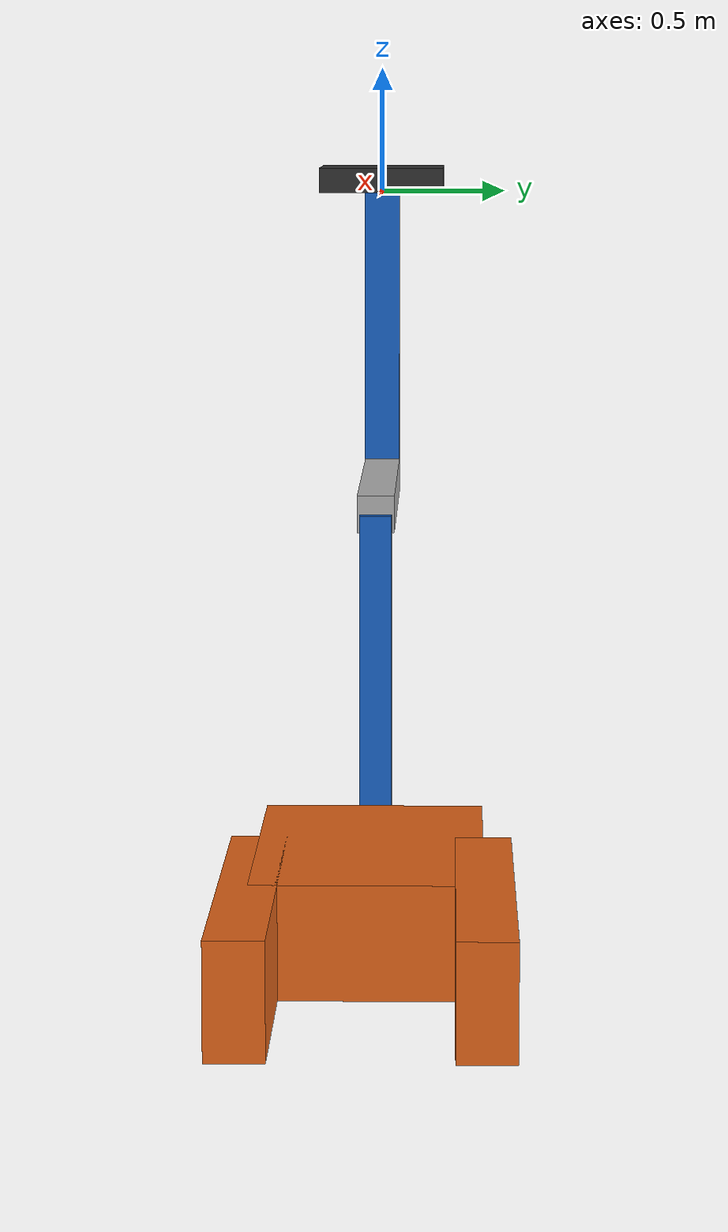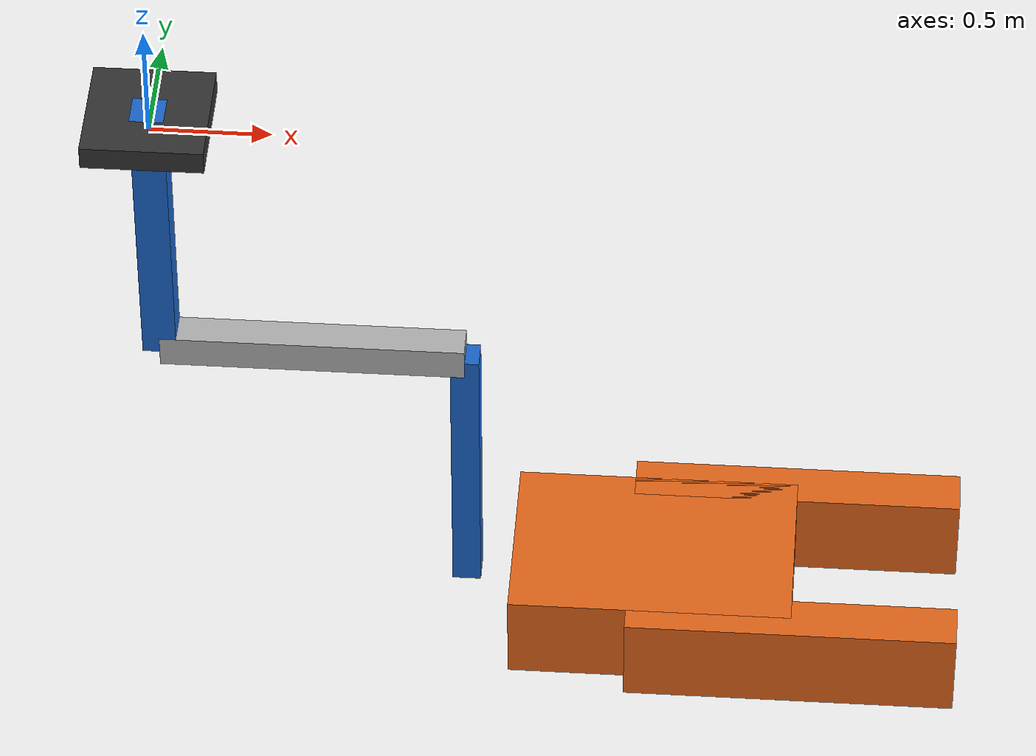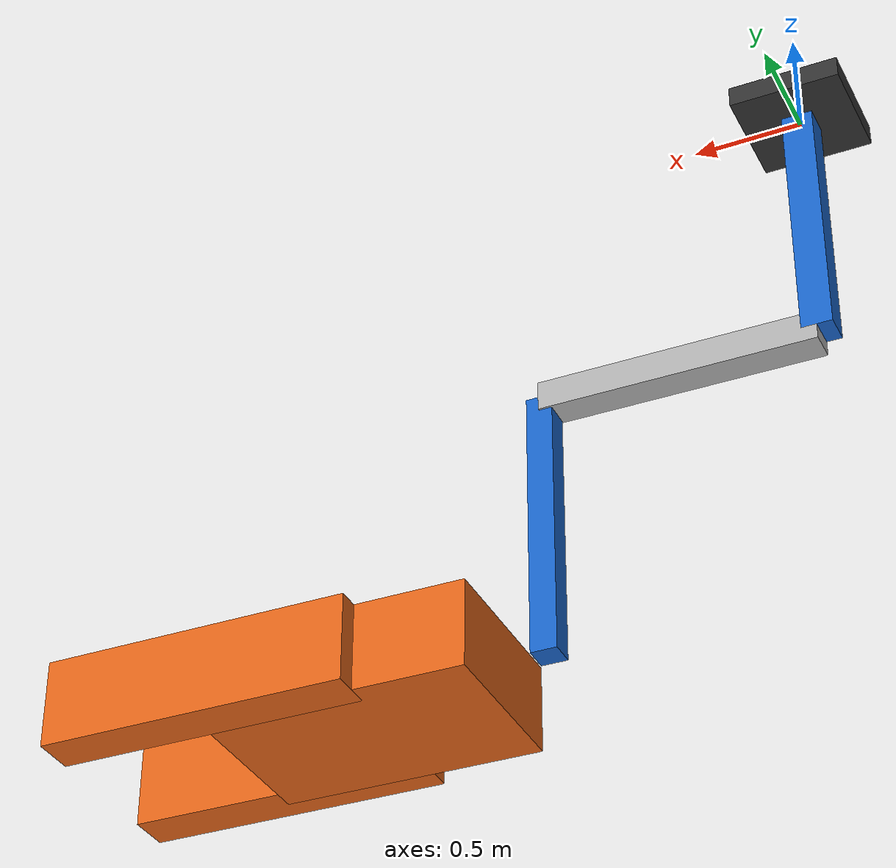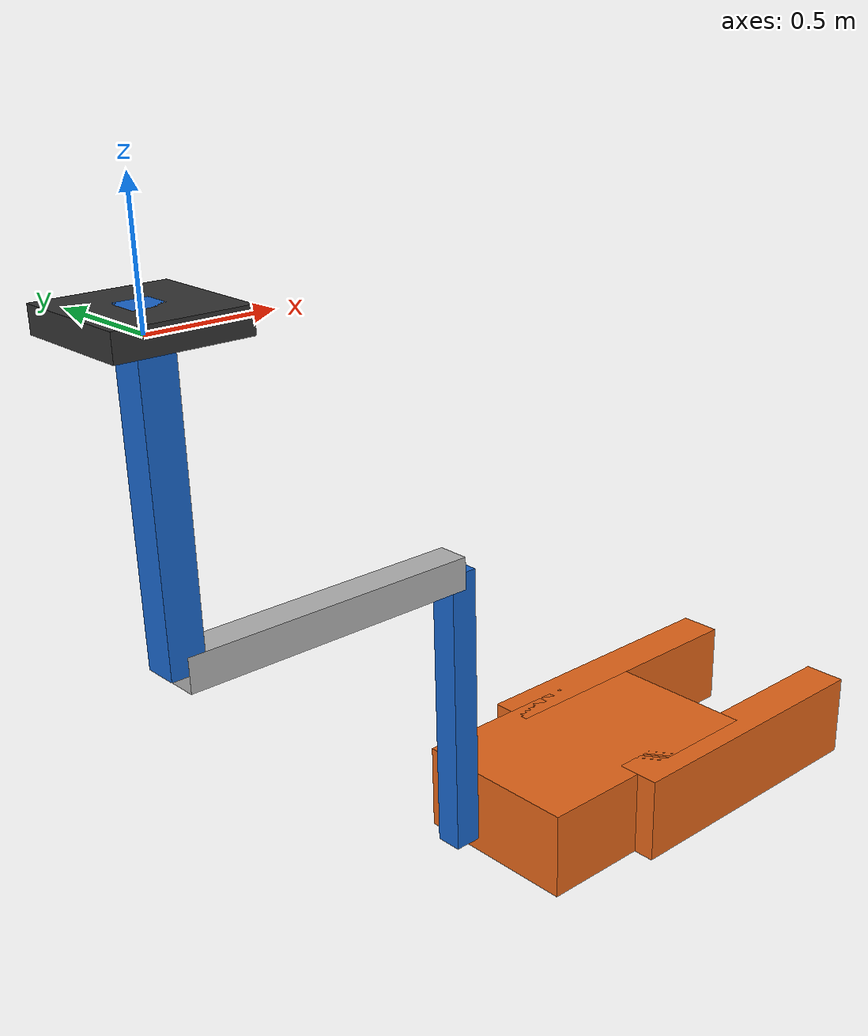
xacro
<?xml version="1.0"?>
<robot xmlns:xacro="http://www.ros.org/wiki/xacro" name="four_dof_arm">
  <!-- Shared 4-DOF model. Keep the original visual layout and the original
       joint-axis convention: each joint rotates about the axis of the link
       that proceeds from it. -->

  <xacro:include filename="$(find arm_description)/urdf/ros2_control.xacro"/>

  <xacro:arg name="controllers_file" default="$(find arm_config)/config/ros2_controllers.yaml"/>
  <xacro:arg name="initial_positions_file" default="$(find arm_config)/config/initial_positions.yaml"/>
  <xacro:property name="mesh_dir" value="$(find arm_description)/meshes"/>
  <xacro:property name="controllers_file_path" value="$(arg controllers_file)"/>
  <xacro:property name="initial_positions_file_path" value="$(arg initial_positions_file)"/>

  <!-- Basic link dimensions -->
  <xacro:property name="link1_length" value="1.27"/>
  <xacro:property name="link2_length" value="1.27"/>
  <xacro:property name="link3_length" value="1.27"/>
  <!-- Convert millimeter-based meshes to meters and scale 10x -->
  <xacro:property name="mesh_scale" value="0.01 0.01 0.01"/>

  <xacro:macro name="default_inertial" params="mass">
    <inertial>
      <origin xyz="0 0 0" rpy="0 0 0"/>
      <mass value="${mass}"/>
      <inertia ixx="0.001" ixy="0.0" ixz="0.0" iyy="0.001" iyz="0.0" izz="0.001"/>
    </inertial>
  </xacro:macro>

  <!-- Base -->
  <link name="base_link">
    <visual>
      <origin xyz="0 0 0.05" rpy="0 0 0"/>
      <geometry>
        <!-- Visible base to anchor the first joint -->
        <box size="0.50 0.50 0.10"/>
      </geometry>
      <material name="dark_grey">
        <color rgba="0.2 0.2 0.2 1.0"/>
      </material>
    </visual>
    <collision>
      <origin xyz="0 0 0.05" rpy="0 0 0"/>
      <geometry>
        <box size="0.50 0.50 0.10"/>
      </geometry>
    </collision>
    <xacro:default_inertial mass="5.0"/>
  </link>

  <joint name="joint1" type="revolute">
    <origin xyz="0 0 0.10" rpy="0 0 0"/>
    <axis xyz="0 0 -1"/>
    <parent link="base_link"/>
    <child link="link1"/>
    <limit lower="-3.14" upper="3.14" effort="50" velocity="1.5"/>
    <dynamics damping="0.1" friction="0.0"/>
  </joint>

  <link name="link1">
    <visual>
      <origin xyz="0 0 -0.635" rpy="0 0 0"/>
      <geometry>
        <box size="0.14 0.14 ${link1_length}"/>
      </geometry>
      <material name="blue">
        <color rgba="0.1 0.4 0.8 1.0"/>
      </material>
    </visual>
    <collision>
      <origin xyz="0 0 -0.635" rpy="0 0 0"/>
      <geometry>
        <box size="0.14 0.14 ${link1_length}"/>
      </geometry>
    </collision>
    <xacro:default_inertial mass="3.0"/>
  </link>

  <joint name="joint2" type="revolute">
    <origin xyz="0 0 -${link1_length}" rpy="0 0 0"/>
    <axis xyz="1 0 0"/>
    <parent link="link1"/>
    <child link="link2"/>
    <limit lower="-2.5" upper="2.5" effort="40" velocity="1.5"/>
    <dynamics damping="0.1" friction="0.0"/>
  </joint>

  <link name="link2">
    <visual>
      <origin xyz="${link2_length / 2.0} 0 0" rpy="0 0 0"/>
      <geometry>
        <box size="${link2_length} 0.14 0.14"/>
      </geometry>
      <material name="light_grey">
        <color rgba="0.7 0.7 0.7 1.0"/>
      </material>
    </visual>
    <collision>
      <origin xyz="${link2_length / 2.0} 0 0" rpy="0 0 0"/>
      <geometry>
        <box size="${link2_length} 0.14 0.14"/>
      </geometry>
    </collision>
    <xacro:default_inertial mass="2.0"/>
  </link>

  <joint name="joint3" type="revolute">
    <origin xyz="${link2_length} 0 0" rpy="0 0 0"/>
    <axis xyz="0 0 -1"/>
    <parent link="link2"/>
    <child link="link3"/>
    <limit lower="-2.5" upper="2.5" effort="30" velocity="2.0"/>
    <dynamics damping="0.1" friction="0.0"/>
  </joint>

  <link name="link3">
    <visual>
      <origin xyz="0 0 -0.635" rpy="0 0 0"/>
      <geometry>
        <box size="0.12 0.12 ${link3_length}"/>
      </geometry>
      <material name="blue">
        <color rgba="0.1 0.4 0.8 1.0"/>
      </material>
    </visual>
    <collision>
      <origin xyz="0 0 -0.635" rpy="0 0 0"/>
      <geometry>
        <box size="0.12 0.12 ${link3_length}"/>
      </geometry>
    </collision>
    <xacro:default_inertial mass="1.5"/>
  </link>

  <joint name="joint4" type="revolute">
    <origin xyz="0 0 -${link3_length}" rpy="0 0 0"/>
    <axis xyz="1 0 0"/>
    <parent link="link3"/>
    <child link="tool0"/>
    <limit lower="-3.14" upper="3.14" effort="20" velocity="2.5"/>
    <dynamics damping="0.05" friction="0.0"/>
  </joint>

  <link name="tool0">
    <visual>
      <origin xyz="0.8 0 0" rpy="0 0 0"/>
      <geometry>
        <box size="1.2 0.8 0.4"/>
      </geometry>
      <material name="orange">
        <color rgba="0.9 0.4 0.1 1.0"/>
      </material>
    </visual>
    <visual>
      <origin xyz="1.4 0.4 0" rpy="0 0 0"/>
      <geometry>
        <box size="1.4 0.2 0.4"/>
      </geometry>
      <material name="orange">
        <color rgba="0.9 0.4 0.1 1.0"/>
      </material>
    </visual>
    <visual>
      <origin xyz="1.4 -0.4 0" rpy="0 0 0"/>
      <geometry>
        <box size="1.4 0.2 0.4"/>
      </geometry>
      <material name="orange">
        <color rgba="0.9 0.4 0.1 1.0"/>
      </material>
    </visual>
    <collision>
      <origin xyz="0.8 0 0" rpy="0 0 0"/>
      <geometry>
        <box size="1.2 0.8 0.4"/>
      </geometry>
    </collision>
    <collision>
      <origin xyz="1.4 0.4 0" rpy="0 0 0"/>
      <geometry>
        <box size="1.4 0.2 0.4"/>
      </geometry>
    </collision>
    <collision>
      <origin xyz="1.4 -0.4 0" rpy="0 0 0"/>
      <geometry>
        <box size="1.4 0.2 0.4"/>
      </geometry>
    </collision>
    <xacro:default_inertial mass="0.5"/>
  </link>

  <xacro:ros2_control_block
    controllers_file="${controllers_file_path}"
    initial_positions_file="${initial_positions_file_path}"
  />
</robot>
